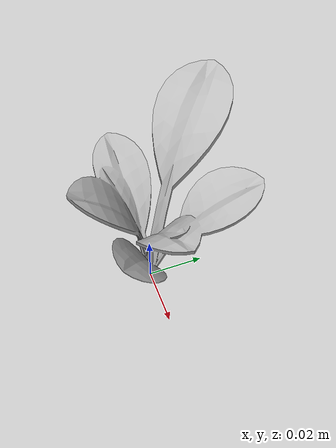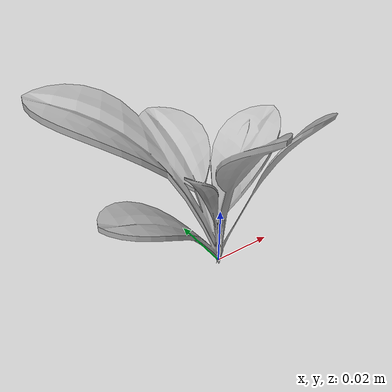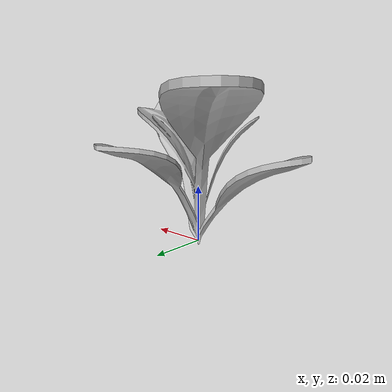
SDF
<sdf version="1.6">
  <model name="sugar_beet_46">
    <static>true</static>
    <link name="body">
      <visual name="visual">
        <geometry>
          <mesh>
            <uri>file:///sugar_beet_46/media/sugar_beet.dae</uri>
          </mesh>
        </geometry>
      </visual>
    </link>
  </model>
</sdf>
